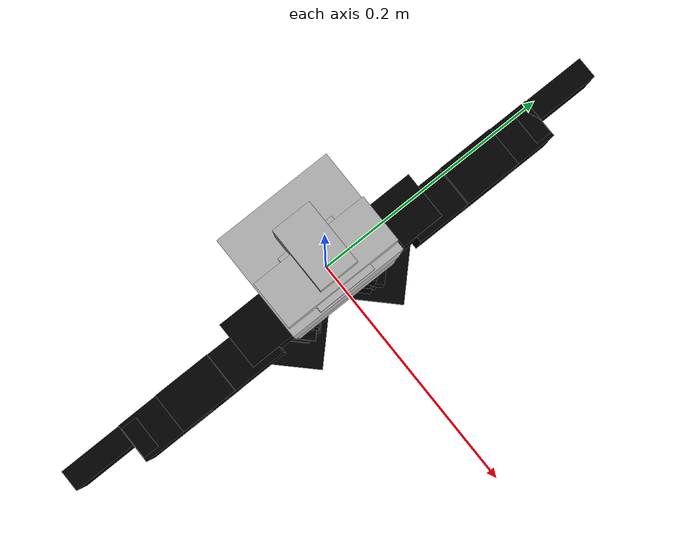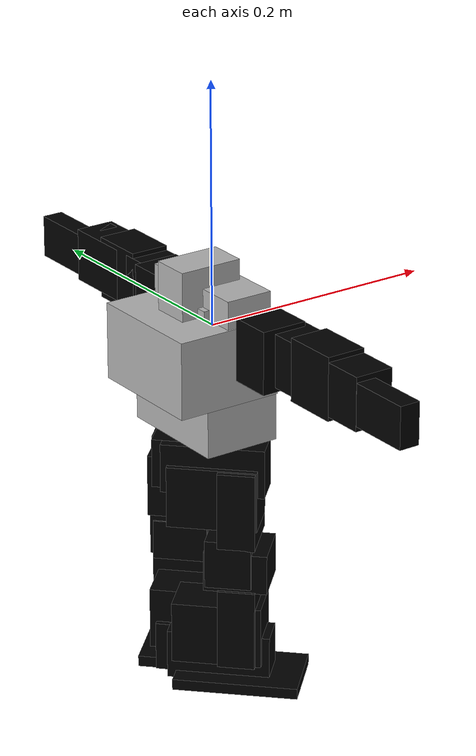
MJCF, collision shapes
<?xml version='1.0' encoding='utf-8'?>
<mujoco model="typea">
  <compiler angle="radian" meshdir="meshes" coordinate="local" />
  <worldbody>
    <geom mesh="fe3dec6d_Bioloid_CUERPO_vis_2" type="mesh" pos="0 0 0" euler="0 0 0" class="visual" />
    <geom mesh="916d31db_Bioloid_CUERPO_vis_4" type="mesh" pos="0 0 0" euler="0 0 0" class="visual" />
    <geom mesh="3c0b5d99_AX-12_FCD-Conv_BDR-Col" type="mesh" pos="0 0.0385 -0.0655" euler="0 3.141592653589793 0" class="visual" />
    <geom mesh="3c0b5d99_AX-12_FCD-Conv_BDR-Col" type="mesh" pos="0 -0.0385 -0.0655" euler="0 3.141592653589793 3.141592653589793" class="visual" />
    <geom mesh="d8612dc6_FP04-F3_FCD-Conv_BDR-Col" type="mesh" pos="-0.0175 0 -0.0655" euler="0 0 -1.5707963267948966" class="visual" />
    <geom mesh="d8612dc6_FP04-F3_FCD-Conv_BDR-Col" type="mesh" pos="0.0175 0 -0.0655" euler="0 0 1.5707963267948966" class="visual" />
    <geom mesh="d8612dc6_FP04-F3_FCD-Conv_BDR-Col" type="mesh" pos="-0.019 0.032 -0.0145" euler="3.141592653589793 -1.5707963267948966 1.5707963267948966" class="visual" />
    <geom mesh="3c0b5d99_AX-12_FCD-Conv_BDR-Col" type="mesh" pos="0 0.032 0" euler="1.5707963267948966 0 3.141592653589793" class="visual" />
    <geom mesh="d8612dc6_FP04-F3_FCD-Conv_BDR-Col" type="mesh" pos="-0.019 -0.032 -0.0145" euler="3.141592653589793 -1.5707963267948966 1.5707963267948966" class="visual" />
    <geom mesh="3c0b5d99_AX-12_FCD-Conv_BDR-Col" type="mesh" pos="0 -0.032 0" euler="1.5707963267948966 0 0" class="visual" />
    <geom mesh="2c813877_AX-S1_FCD-Conv_BDR-Col" type="mesh" pos="0 0 0.025" euler="-1.5707963267948966 0 -1.5707963267948966" class="visual" />
    <geom mesh="df1d2ef7_CM-5_FCD-Conv_BDR-Col" type="mesh" pos="-0.032 0 -0.015" euler="0 3.141592653589793 1.5707963267948966" class="visual" />
    <geom mesh="94afeb60_BPF-CHEST-B_FCD-Conv_BDR-Col" type="mesh" pos="0 0 0" euler="1.5707963267948966 0 1.5707963267948966" class="visual" />
    <geom mesh="8b120736_BPF-CHEST-F_FCD-Conv_BDR-Col" type="mesh" pos="0 0 0" euler="1.5707963267948966 0 1.5707963267948966" class="visual" />
    <geom name="head_collision" size="0.027 0.0165 0.022" pos="-0.0122 0 0.035" type="box" />
    <geom name="torso_collision_top" size="0.04525 0.0515 0.03175" pos="-0.019 0 -0.015" type="box" />
    <geom name="torso_collision_bottom" size="0.0325 0.0495 0.0215" pos="-0.00625 0 -0.0648" type="box" />
    <geom size="0.025 0.025 0.025" type="box" />
    <geom name="head2_collision" size="0.02 0.05 0.04" type="box" />
    <geom size="0.005 0.005 0.005" pos="0 0 0.05" type="box" rgba="0 1 0 1" />
    <body name="r_shoulder_swing_link" pos="0 -0.032 0" quat="0.5 0.5 0.5 -0.5">
      <geom mesh="11c5acbd_FP04-F1_FCD-Conv_BDR-Col" type="mesh" pos="0 0.014 0.044" euler="0 3.141592653589793 3.141592653589793" class="visual" />
      <inertial pos="0 0.006 0.0375" quat="0 0.707107 0 0.707107" mass="0.01" diaginertia="3.52e-06 3.33e-06 2.35e-06" />
      <joint name="r_shoulder_swing_joint" pos="0 0 0" axis="0 0 1" range="-1 1.5708" actuatorfrcrange="-2.8 2.8" />
      <geom name="r_shoulder_collision" size="0.026 0.0195 0.018" pos="0 0.006 0.0375" type="box" class="collision" />
      <body name="r_upper_arm_link" pos="0 0.014 0.044" quat="0.707107 0 -0.707107 0">
        <geom mesh="b04d8bdf_FP04-F2_FCD-Conv_BDR-Col" type="mesh" pos="0.0675 0 0" euler="-1.5707963267948966 1.5707963267948966 1.5707963267948966" class="visual" />
        <geom mesh="d8612dc6_FP04-F3_FCD-Conv_BDR-Col" type="mesh" pos="0.0415 0 0" euler="0 0 1.5707963267948966" class="visual" />
        <geom mesh="c9bc5e6a_BPF-WA_FCD-Conv_BDR-Col" type="mesh" pos="0 0 -0.019" euler="-1.5707963267948966 0 1.5707963267948966" class="visual" />
        <geom mesh="5f501081_BPF-BU_FCD-Conv_BDR-Col" type="mesh" pos="0 0 -0.0185" euler="-1.5707963267948966 0 1.5707963267948966" class="visual" />
        <geom mesh="3c0b5d99_AX-12_FCD-Conv_BDR-Col" type="mesh" pos="0 0 0" euler="0 0 1.5707963267948966" class="visual" />
        <inertial pos="0.03536 0 0" quat="0.5 0.5 0.5 0.5" mass="0.07" diaginertia="5.746e-05 5.024e-05 1.99e-05" />
        <joint name="r_shoulder_lateral_joint" pos="0 0 0" axis="0 0 -1" range="-1.5 1.5" actuatorfrcrange="-2.8 2.8" />
        <geom name="r_upper arm_collision_proximal" size="0.027 0.0165 0.022" pos="0.0148 0 0" type="box" class="collision" />
        <geom name="r_upper arm_collision_distal" size="0.0235 0.0165 0.026" pos="0.0555 0 0" type="box" class="collision" />
        <body name="r_lower_arm_link" pos="0.0675 0 0">
          <geom mesh="abc2df66_FP04-F11_FCD-Conv_BDR-Col" type="mesh" pos="0.0415 0 0" euler="3.141592653589793 -1.5707963267948966 0" class="visual" />
          <geom mesh="d8612dc6_FP04-F3_FCD-Conv_BDR-Col" type="mesh" pos="0.0415 0 0" euler="0 0 1.5707963267948966" class="visual" />
          <geom mesh="c9bc5e6a_BPF-WA_FCD-Conv_BDR-Col" type="mesh" pos="0 0 -0.019" euler="-1.5707963267948966 0 1.5707963267948966" class="visual" />
          <geom mesh="5f501081_BPF-BU_FCD-Conv_BDR-Col" type="mesh" pos="0 0 -0.0185" euler="-1.5707963267948966 0 1.5707963267948966" class="visual" />
          <geom mesh="3c0b5d99_AX-12_FCD-Conv_BDR-Col" type="mesh" pos="0 0 0" euler="0 0 1.5707963267948966" class="visual" />
          <inertial pos="0.00554868 -0.0067729 -0.000515957" quat="0.479854 0.473689 0.522751 0.521624" mass="0.068" diaginertia="7.12121e-05 6.73943e-05 1.78853e-05" />
          <joint name="r_elbow_joint" pos="0 0 0" axis="0 0 -1" range="-1.77 1.77" actuatorfrcrange="-2.8 2.8" />
          <geom name="r_lower_arm_collision" size="0.029 0.0165 0.022" pos="0.017 0 0" type="box" class="collision" />
          <geom name="r_palm_collision" size="0.00655 0.01325 0.022" pos="0.039 0 0" type="box" class="collision" />
          <geom name="r_fingers_collision" size="0.02875 0.00875 0.0175" pos="0.0701 -0.0077 0" type="box" class="collision" />
        </body>
      </body>
    </body>
    <body name="l_shoulder_swing_link" pos="0 0.032 0" quat="0.5 -0.5 -0.5 -0.5">
      <geom mesh="11c5acbd_FP04-F1_FCD-Conv_BDR-Col" type="mesh" pos="0 0.014 0.044" euler="0 3.141592653589793 3.141592653589793" class="visual" />
      <inertial pos="0 0.006 0.0375" quat="0 0.707107 0 0.707107" mass="0.01" diaginertia="3.52e-06 3.33e-06 2.35e-06" />
      <joint name="l_shoulder_swing_joint" pos="0 0 0" axis="0 0 1" range="-1 1.5708" actuatorfrcrange="-2.8 2.8" />
      <geom name="l_shoulder_collision" size="0.026 0.0195 0.018" pos="0 0.006 0.0375" type="box" class="collision" />
      <body name="l_upper_arm_link" pos="0 0.014 0.044" quat="0.707107 0 -0.707107 0">
        <geom mesh="b04d8bdf_FP04-F2_FCD-Conv_BDR-Col" type="mesh" pos="0.0675 0 0" euler="1.5707963267948966 1.5707963267948966 -1.5707963267948966" class="visual" />
        <geom mesh="d8612dc6_FP04-F3_FCD-Conv_BDR-Col" type="mesh" pos="0.0415 0 0" euler="3.141592653589793 0 -1.5707963267948966" class="visual" />
        <geom mesh="c9bc5e6a_BPF-WA_FCD-Conv_BDR-Col" type="mesh" pos="0 0 0.019" euler="1.5707963267948966 0 1.5707963267948966" class="visual" />
        <geom mesh="5f501081_BPF-BU_FCD-Conv_BDR-Col" type="mesh" pos="0 0 0.0185" euler="1.5707963267948966 0 1.5707963267948966" class="visual" />
        <geom mesh="3c0b5d99_AX-12_FCD-Conv_BDR-Col" type="mesh" pos="0 0 0" euler="3.141592653589793 0 -1.5707963267948966" class="visual" />
        <inertial pos="0.03536 0 0" quat="0.5 0.5 0.5 0.5" mass="0.07" diaginertia="5.746e-05 5.024e-05 1.99e-05" />
        <joint name="l_shoulder_lateral_joint" pos="0 0 0" axis="0 0 1" range="-1.5 1.5" actuatorfrcrange="-2.8 2.8" />
        <geom name="l_upper arm_collision_proximal" size="0.027 0.0165 0.022" pos="0.0148 0 0" type="box" class="collision" />
        <geom name="l_upper arm_collision_distal" size="0.0235 0.0165 0.026" pos="0.0555 0 0" type="box" class="collision" />
        <body name="l_lower_arm_link" pos="0.0675 0 0">
          <geom mesh="abc2df66_FP04-F11_FCD-Conv_BDR-Col" type="mesh" pos="0.0415 0 0" euler="0 -1.5707963267948966 3.141592653589793" class="visual" />
          <geom mesh="d8612dc6_FP04-F3_FCD-Conv_BDR-Col" type="mesh" pos="0.0415 0 0" euler="3.141592653589793 0 -1.5707963267948966" class="visual" />
          <geom mesh="c9bc5e6a_BPF-WA_FCD-Conv_BDR-Col" type="mesh" pos="0 0 0.019" euler="1.5707963267948966 0 1.5707963267948966" class="visual" />
          <geom mesh="5f501081_BPF-BU_FCD-Conv_BDR-Col" type="mesh" pos="0 0 0.0185" euler="1.5707963267948966 0 1.5707963267948966" class="visual" />
          <geom mesh="3c0b5d99_AX-12_FCD-Conv_BDR-Col" type="mesh" pos="0 0 0" euler="3.141592653589793 0 -1.5707963267948966" class="visual" />
          <inertial pos="0.00641783 0.00557279 -0.000592108" quat="0.519286 0.520103 0.476239 0.482733" mass="0.068" diaginertia="7.03478e-05 6.6411e-05 1.77672e-05" />
          <joint name="l_elbow_joint" pos="0 0 0" axis="0 0 1" range="-1.77 1.77" actuatorfrcrange="-2.8 2.8" />
          <geom name="l_lower_arm_collision" size="0.029 0.0165 0.022" pos="0.017 0 0" type="box" class="collision" />
          <geom name="l_palm_collision" size="0.00655 0.01325 0.022" pos="0.039 0 0" type="box" class="collision" />
          <geom name="l_fingers_collision" size="0.02875 0.00875 0.0175" pos="0.0701 -0.0077 0" type="box" class="collision" />
        </body>
      </body>
    </body>
    <body name="r_hip_twist_link" pos="0 -0.0385 -0.0655" quat="0 -0.383885 0.923381 0">
      <geom mesh="df207a8e_FP04-F5_FCD-Conv_BDR-Col" type="mesh" pos="0 0.02 0.05" euler="3.141592653589793 0 3.141592653589793" class="visual" />
      <inertial pos="0.0008 0.02 0.041" quat="0.707107 0.707107 0 0" mass="0.016" diaginertia="1.1372e-05 1.0307e-05 3.3083e-06" />
      <joint name="r_hip_twist_joint" pos="0 0 0" axis="0 0 1" range="-0.8 0.8" actuatorfrcrange="-10 10" />
      <geom name="r_hip_twist_collision" size="0.0145 0.0415 0.02025" pos="0.0008 0.02 0.041" type="box" class="collision" />
      <body name="r_hip_lateral_link" pos="0 0 0.05" quat="0.707107 -0.707107 0 0">
        <geom mesh="4aa1180e_FP04-F7_FCD-Conv_BDR-Col" type="mesh" pos="0 -0.0145 -0.0157" euler="1.5707963267948966 0 1.5707963267948966" class="visual" />
        <geom mesh="5f501081_BPF-BU_FCD-Conv_BDR-Col" type="mesh" pos="0 0 -0.0147" euler="-1.5707963267948966 0 0" class="visual" />
        <geom mesh="3c0b5d99_AX-12_FCD-Conv_BDR-Col" type="mesh" pos="0 0 0.003" euler="0 -1.5707963267948966 0" class="visual" />
        <geom mesh="c44f3233_FP04-F6_FCD-Conv_BDR-Col" type="mesh" pos="0.019 -0.0145 0.0513" euler="0 -1.5707963267948966 1.5707963267948966" class="visual" />
        <geom mesh="c44f3233_FP04-F6_FCD-Conv_BDR-Col" type="mesh" pos="-0.019 -0.0145 0.0513" euler="0 -1.5707963267948966 -1.5707963267948966" class="visual" />
        <geom mesh="3c0b5d99_AX-12_FCD-Conv_BDR-Col" type="mesh" pos="0 0 0.0353" euler="0 0 0" class="visual" />
        <inertial pos="0 -0.0135 0.02" mass="0.12" diaginertia="7.79941e-05 6.79841e-05 4.20099e-05" />
        <joint name="r_hip_lateral_joint" pos="0 0 0" axis="0 0 -1" range="-0.8 0.8" actuatorfrcrange="-10 10" />
        <geom name="r_hip_lateral_collision" size="0.02 0.0255 0.03605" pos="0 -0.0135 0.02" type="box" class="collision" />
        <body name="r_upper_leg_link" quat="0.5 0.5 -0.5 -0.5">
          <geom mesh="11c5acbd_FP04-F1_FCD-Conv_BDR-Col" type="mesh" pos="0.075 0.0145 0" euler="1.5707963267948966 1.5707963267948966 -1.5707963267948966" class="visual" />
          <geom mesh="9856e80b_FP04-F4_FCD-Conv_BDR-Col" type="mesh" pos="0 0 0" euler="-1.5707963267948966 -1.5707963267948966 -1.5707963267948966" class="visual" />
          <inertial pos="0.0413221 0.00280897 0" quat="0.472541 0.472541 0.526028 0.526028" mass="0.03" diaginertia="2.96116e-05 2.64478e-05 8.84124e-06" />
          <joint name="r_hip_swing_joint" pos="0 0 0" axis="0 0 1" range="-2 2" actuatorfrcrange="-10 10" />
          <geom name="r_upper_leg_proximal_collision" size="0.0325 0.015 0.0245" pos="0.0214 0 0" type="box" class="collision" />
          <geom name="r_upper_leg_distal_collision" size="0.02 0.01855 0.0245" pos="0.0675 0.0065 0" type="box" class="collision" />
          <body name="r_lower_leg_link" pos="0.075 0.0145 0">
            <geom mesh="9856e80b_FP04-F4_FCD-Conv_BDR-Col" type="mesh" pos="0.071 -0.0145 0" euler="1.5707963267948966 1.5707963267948966 -1.5707963267948966" class="visual" />
            <geom mesh="d8612dc6_FP04-F3_FCD-Conv_BDR-Col" type="mesh" pos="0.019 -0.0145 0" euler="0 0 1.5707963267948966" class="visual" />
            <geom mesh="3c0b5d99_AX-12_FCD-Conv_BDR-Col" type="mesh" pos="0 0 0" euler="0 0 0" class="visual" />
            <inertial pos="0.0280842 -0.0140708 0" quat="0.504228 0.504228 0.495736 0.495736" mass="0.08" diaginertia="8.23327e-05 7.85267e-05 2.55464e-05" />
            <joint name="r_knee_joint" pos="0 0 0" axis="0 0 -1" range="-2 0" actuatorfrcrange="-10 10" />
            <geom name="r_lower_leg_proximal_collision" size="0.0165 0.0255 0.022" pos="0 -0.0135 0" type="box" class="collision" />
            <geom name="r_lower_leg_distal_collision" size="0.0335 0.015 0.0245" pos="0.0492 -0.0145 0" type="box" class="collision" />
            <body name="r_ankle_swing_link" pos="0.071 -0.0145 0" quat="0 1 0 0">
              <geom mesh="c44f3233_FP04-F6_FCD-Conv_BDR-Col" type="mesh" pos="-0.0145 -0.048 -0.019" euler="1.5707963267948966 0 -1.5707963267948966" class="visual" />
              <geom mesh="c44f3233_FP04-F6_FCD-Conv_BDR-Col" type="mesh" pos="-0.0145 -0.048 0.019" euler="-1.5707963267948966 0 -1.5707963267948966" class="visual" />
              <geom mesh="3c0b5d99_AX-12_FCD-Conv_BDR-Col" type="mesh" pos="0 -0.032 0" euler="0 1.5707963267948966 -1.5707963267948966" class="visual" />
              <geom mesh="4aa1180e_FP04-F7_FCD-Conv_BDR-Col" type="mesh" pos="-0.0145 0.019 0" euler="3.141592653589793 0 0" class="visual" />
              <geom mesh="3c0b5d99_AX-12_FCD-Conv_BDR-Col" type="mesh" pos="0 0 0" euler="0 3.141592653589793 -1.5707963267948966" class="visual" />
              <inertial pos="-0.0135 -0.0167 0" quat="0.5 0.5 -0.5 0.5" mass="0.0685" diaginertia="4.45216e-05 3.88076e-05 2.39807e-05" />
              <joint name="r_ankle_swing_joint" pos="0 0 0" axis="0 0 1" range="-0.4 2" actuatorfrcrange="-10 10" />
              <geom name="r_ankle_swing_collision" size="0.0255 0.03605 0.02" pos="-0.0135 -0.0167 0" type="box" class="collision" />
              <body name="r_ankle_lateral_link" quat="0.707107 -0.707107 0 0">
                <geom mesh="df207a8e_FP04-F5_FCD-Conv_BDR-Col" type="mesh" pos="0 0 -0.0155" euler="-1.5707963267948966 0 -1.5707963267948966" class="visual" />
                <geom mesh="5f501081_BPF-BU_FCD-Conv_BDR-Col" type="mesh" pos="0 0 0.015" euler="1.5707963267948966 0 0" class="visual" />
                <inertial pos="0.0110662 0.00171994 0.00142326" quat="0.778579 -0.0363424 -0.0287513 0.625833" mass="0.03" diaginertia="3.27142e-05 2.73521e-05 1.67953e-05" />
                <joint name="r_ankle_lateral_joint" pos="0 0 0" axis="0 0 -1" range="-0.8 0.8" actuatorfrcrange="-10 10" />
                <geom name="r_ankle_lateral_collision" size="0.02025 0.0145 0.0415" pos="0.009 0 -0.016" type="box" class="collision" />
                <geom name="r_foot_collision" size="0.0045 0.0305 0.0505" pos="0.0277 0 0" type="box" class="collision" />
              </body>
            </body>
          </body>
        </body>
      </body>
    </body>
    <body name="l_hip_twist_link" pos="0 0.0385 -0.0655" quat="0 0.383885 0.923381 0">
      <geom mesh="df207a8e_FP04-F5_FCD-Conv_BDR-Col" type="mesh" pos="0 -0.02 0.05" euler="3.141592653589793 0 0" class="visual" />
      <inertial pos="0.0008 -0.02 0.041" quat="0.707107 0.707107 0 0" mass="0.016" diaginertia="1.1372e-05 1.0307e-05 3.3083e-06" />
      <joint name="l_hip_twist_joint" pos="0 0 0" axis="0 0 1" range="-0.8 0.8" actuatorfrcrange="-10 10" />
      <geom name="l_hip_twist_collision" size="0.0145 0.0415 0.02025" pos="0.0008 -0.02 0.041" type="box" class="collision" />
      <body name="l_hip_lateral_link" pos="0 0 0.05" quat="0.707107 0.707107 0 0">
        <geom mesh="4aa1180e_FP04-F7_FCD-Conv_BDR-Col" type="mesh" pos="0 0.0145 -0.0157" euler="-1.5707963267948966 3.141592653589793 1.5707963267948966" class="visual" />
        <geom mesh="5f501081_BPF-BU_FCD-Conv_BDR-Col" type="mesh" pos="0 0 -0.0147" euler="1.5707963267948966 3.141592653589793 0" class="visual" />
        <geom mesh="3c0b5d99_AX-12_FCD-Conv_BDR-Col" type="mesh" pos="0 0 0.003" euler="3.141592653589793 1.5707963267948966 0" class="visual" />
        <geom mesh="c44f3233_FP04-F6_FCD-Conv_BDR-Col" type="mesh" pos="-0.019 0.0145 0.0513" euler="0 -1.5707963267948966 -1.5707963267948966" class="visual" />
        <geom mesh="c44f3233_FP04-F6_FCD-Conv_BDR-Col" type="mesh" pos="0.019 0.0145 0.0513" euler="0 -1.5707963267948966 1.5707963267948966" class="visual" />
        <geom mesh="3c0b5d99_AX-12_FCD-Conv_BDR-Col" type="mesh" pos="0 0 0.0353" euler="0 0 3.141592653589793" class="visual" />
        <inertial pos="0 0.0135 0.02" mass="0.12" diaginertia="7.7994e-05 6.7984e-05 4.20099e-05" />
        <joint name="l_hip_lateral_joint" pos="0 0 0" axis="0 0 -1" range="-0.8 0.8" actuatorfrcrange="-10 10" />
        <geom name="l_hip_lateral_collision" size="0.02 0.0255 0.03605" pos="0 0.0135 0.02" type="box" class="collision" />
        <body name="l_upper_leg_link" quat="0.5 0.5 -0.5 -0.5">
          <geom mesh="11c5acbd_FP04-F1_FCD-Conv_BDR-Col" type="mesh" pos="-0.075 0.0145 0" euler="1.5707963267948966 -1.5707963267948966 1.5707963267948966" class="visual" />
          <geom mesh="9856e80b_FP04-F4_FCD-Conv_BDR-Col" type="mesh" pos="0 0 0" euler="1.5707963267948966 1.5707963267948966 -1.5707963267948966" class="visual" />
          <inertial pos="-0.0413221 0.00280897 0" quat="0.526028 0.526028 0.472541 0.472541" mass="0.03" diaginertia="2.96116e-05 2.64478e-05 8.84124e-06" />
          <joint name="l_hip_swing_joint" pos="0 0 0" axis="0 0 1" range="-2 2" actuatorfrcrange="-10 10" />
          <geom name="l_upper_leg_proximal_collision" size="0.0325 0.015 0.0245" pos="-0.0214 0 0" type="box" class="collision" />
          <geom name="l_upper_leg_distal_collision" size="0.02 0.01855 0.0245" pos="-0.0675 0.0065 0" type="box" class="collision" />
          <body name="l_lower_leg_link" pos="-0.075 0.0145 0">
            <geom mesh="9856e80b_FP04-F4_FCD-Conv_BDR-Col" type="mesh" pos="-0.071 -0.0145 0" euler="-1.5707963267948966 -1.5707963267948966 -1.5707963267948966" class="visual" />
            <geom mesh="d8612dc6_FP04-F3_FCD-Conv_BDR-Col" type="mesh" pos="-0.019 -0.0145 0" euler="0 0 -1.5707963267948966" class="visual" />
            <geom mesh="3c0b5d99_AX-12_FCD-Conv_BDR-Col" type="mesh" pos="0 0 0" euler="0 0 0" class="visual" />
            <inertial pos="-0.0280842 -0.0140708 0" quat="0.495736 0.495736 0.504228 0.504228" mass="0.08" diaginertia="8.23324e-05 7.8527e-05 2.55466e-05" />
            <joint name="l_knee_joint" pos="0 0 0" axis="0 0 -1" range="0 2" actuatorfrcrange="-10 10" />
            <geom name="l_lower_leg_proximal_collision" size="0.0165 0.0255 0.022" pos="0 -0.0135 0" type="box" class="collision" />
            <geom name="l_lower_leg_distal_collision" size="0.0335 0.015 0.0245" pos="-0.0492 -0.0145 0" type="box" class="collision" />
            <body name="l_ankle_swing_link" pos="-0.071 -0.0145 0" quat="0 1 0 0">
              <geom mesh="c44f3233_FP04-F6_FCD-Conv_BDR-Col" type="mesh" pos="0.0145 -0.048 0.019" euler="-1.5707963267948966 0 -1.5707963267948966" class="visual" />
              <geom mesh="c44f3233_FP04-F6_FCD-Conv_BDR-Col" type="mesh" pos="0.0145 -0.048 -0.019" euler="1.5707963267948966 0 -1.5707963267948966" class="visual" />
              <geom mesh="3c0b5d99_AX-12_FCD-Conv_BDR-Col" type="mesh" pos="0 -0.032 0" euler="0 -1.5707963267948966 1.5707963267948966" class="visual" />
              <geom mesh="4aa1180e_FP04-F7_FCD-Conv_BDR-Col" type="mesh" pos="0.0145 0.019 0" euler="3.141592653589793 3.141592653589793 0" class="visual" />
              <geom mesh="3c0b5d99_AX-12_FCD-Conv_BDR-Col" type="mesh" pos="0 0 0" euler="3.141592653589793 0 -1.5707963267948966" class="visual" />
              <inertial pos="0.0135 -0.0167 0" quat="0.5 0.5 -0.5 0.5" mass="0.0685" diaginertia="4.45216e-05 3.88076e-05 2.39807e-05" />
              <joint name="l_ankle_swing_joint" pos="0 0 0" axis="0 0 1" range="-2 0.4" actuatorfrcrange="-10 10" />
              <geom name="l_ankle_swing_collision" size="0.0255 0.03605 0.02" pos="0.0135 -0.0167 0" type="box" class="collision" />
              <body name="l_ankle_lateral_link" quat="0.707107 -0.707107 0 0">
                <geom mesh="df207a8e_FP04-F5_FCD-Conv_BDR-Col" type="mesh" pos="0 0 -0.0155" euler="1.5707963267948966 3.141592653589793 -1.5707963267948966" class="visual" />
                <geom mesh="5f501081_BPF-BU_FCD-Conv_BDR-Col" type="mesh" pos="0 0 0.015" euler="1.5707963267948966 0 0" class="visual" />
                <inertial pos="-0.0166338 -0.00175072 0.00142326" quat="0.868957 0.0102562 0.00317085 0.494771" mass="0.03" diaginertia="2.80077e-05 2.73576e-05 1.22613e-05" />
                <joint name="l_ankle_lateral_joint" pos="0 0 0" axis="0 0 -1" range="-0.8 0.8" actuatorfrcrange="-10 10" />
                <geom name="l_ankle_lateral_collision" size="0.02025 0.0145 0.0415" pos="-0.009 0 -0.016" type="box" class="collision" />
                <geom name="l_foot_collision" size="0.0045 0.0305 0.0505" pos="-0.0277 0 0" type="box" class="collision" />
              </body>
            </body>
          </body>
        </body>
      </body>
    </body>
  </worldbody>
  <asset>
    <mesh name="8b120736_BPF-CHEST-F_FCD-Conv_BDR-Col" file="8b120736_BPF-CHEST-F_FCD-Conv_BDR-Col.stl" scale="0.001 0.001 0.001" />
    <mesh name="94afeb60_BPF-CHEST-B_FCD-Conv_BDR-Col" file="94afeb60_BPF-CHEST-B_FCD-Conv_BDR-Col.stl" scale="0.001 0.001 0.001" />
    <mesh name="df1d2ef7_CM-5_FCD-Conv_BDR-Col" file="df1d2ef7_CM-5_FCD-Conv_BDR-Col.stl" scale="0.001 0.001 0.001" />
    <mesh name="2c813877_AX-S1_FCD-Conv_BDR-Col" file="2c813877_AX-S1_FCD-Conv_BDR-Col.stl" scale="0.001 0.001 0.001" />
    <mesh name="3c0b5d99_AX-12_FCD-Conv_BDR-Col" file="3c0b5d99_AX-12_FCD-Conv_BDR-Col.stl" scale="0.001 0.001 0.001" />
    <mesh name="d8612dc6_FP04-F3_FCD-Conv_BDR-Col" file="d8612dc6_FP04-F3_FCD-Conv_BDR-Col.stl" scale="0.001 0.001 0.001" />
    <mesh name="11c5acbd_FP04-F1_FCD-Conv_BDR-Col" file="11c5acbd_FP04-F1_FCD-Conv_BDR-Col.stl" scale="0.001 0.001 0.001" />
    <mesh name="5f501081_BPF-BU_FCD-Conv_BDR-Col" file="5f501081_BPF-BU_FCD-Conv_BDR-Col.stl" scale="0.001 0.001 0.001" />
    <mesh name="c9bc5e6a_BPF-WA_FCD-Conv_BDR-Col" file="c9bc5e6a_BPF-WA_FCD-Conv_BDR-Col.stl" scale="0.001 0.001 0.001" />
    <mesh name="b04d8bdf_FP04-F2_FCD-Conv_BDR-Col" file="b04d8bdf_FP04-F2_FCD-Conv_BDR-Col.stl" scale="0.001 0.001 0.001" />
    <mesh name="abc2df66_FP04-F11_FCD-Conv_BDR-Col" file="abc2df66_FP04-F11_FCD-Conv_BDR-Col.stl" scale="0.001 0.001 0.001" />
    <mesh name="df207a8e_FP04-F5_FCD-Conv_BDR-Col" file="df207a8e_FP04-F5_FCD-Conv_BDR-Col.stl" scale="0.001 0.001 0.001" />
    <mesh name="c44f3233_FP04-F6_FCD-Conv_BDR-Col" file="c44f3233_FP04-F6_FCD-Conv_BDR-Col.stl" scale="0.001 0.001 0.001" />
    <mesh name="4aa1180e_FP04-F7_FCD-Conv_BDR-Col" file="4aa1180e_FP04-F7_FCD-Conv_BDR-Col.stl" scale="0.001 0.001 0.001" />
    <mesh name="9856e80b_FP04-F4_FCD-Conv_BDR-Col" file="9856e80b_FP04-F4_FCD-Conv_BDR-Col.stl" scale="0.001 0.001 0.001" />
    <mesh name="bc9e07fb_FP04-F12_FCD-Conv_BDR-Col" file="bc9e07fb_FP04-F12_FCD-Conv_BDR-Col.stl" scale="0.001 0.001 0.001" />
    <mesh name="916d31db_Bioloid_CUERPO_vis_4" file="916d31db_Bioloid_CUERPO_vis_4.stl" scale="1.0 1.0 1.0" />
    <mesh name="fe3dec6d_Bioloid_CUERPO_vis_2" file="fe3dec6d_Bioloid_CUERPO_vis_2.stl" scale="1.0 1.0 1.0" />
  </asset>
  <default>
    <mesh scale="0.001 0.001 0.001" />
    <geom rgba="0.7 0.7 0.7 1.0" />
    <joint damping="0.5" frictionloss="0.03" />
    <default class="visual">
      <geom contype="0" conaffinity="0" group="1" />
    </default>
    <default class="collision">
      <geom rgba="0 0 0 0" group="2" />
    </default>
  </default>
</mujoco>
